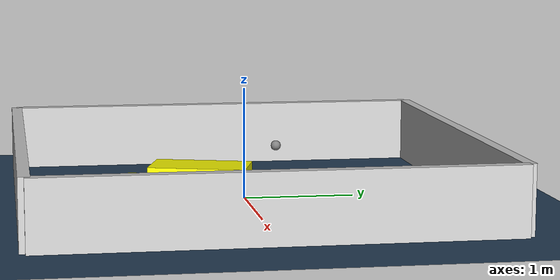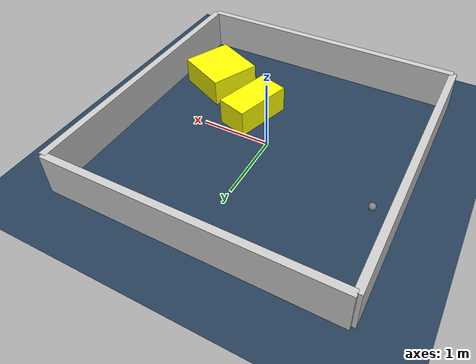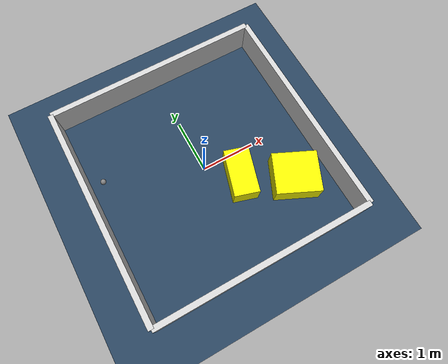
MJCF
<?xml version="1.0" ?>
<mujoco model="generated_environment">
  <option timestep="0.01" integrator="RK4" cone="elliptic"/>
  <default>
    <geom density="1"/>
  </default>
  <asset>
    <texture builtin="gradient" height="3072" rgb1="0.3 0.5 0.7" rgb2="0 0 0" type="skybox" width="512"/>
    <texture builtin="checker" height="300" mark="edge" markrgb="0.8 0.8 0.8" name="groundplane" rgb1="0.2 0.3 0.4" rgb2="0.1 0.2 0.3" type="2d" width="300"/>
    <material name="groundplane" reflectance="0.2" texrepeat="5 5" texture="groundplane" texuniform="true"/>
    <material name="robot" rgba="0.0 1.0 0.0 1"/>
  </asset>
  <worldbody>
    <light dir="0 0 -1" directional="true" pos="0 0 1.5"/>
    <geom condim="4" friction="1.0 0.005 0.001" material="groundplane" name="floor" size="0 0 0.05" type="plane"/>
    <body name="walls">
      <geom name="wall_1" condim="4" pos="-2.0 0.0 0.3" rgba="0.800000011920929 0.800000011920929 0.800000011920929 1.0" size="0.05 2.0 0.3" type="box"/>
      <geom name="wall_2" condim="4" pos="2.0 0.0 0.3" rgba="0.800000011920929 0.800000011920929 0.800000011920929 1.0" size="0.05 2.0 0.3" type="box"/>
      <geom name="wall_3" condim="4" pos="0.0 -2.0 0.3" rgba="0.800000011920929 0.800000011920929 0.800000011920929 1.0" size="2.0 0.05 0.3" type="box"/>
      <geom name="wall_4" condim="4" pos="0.0 2.0 0.3" rgba="0.800000011920929 0.800000011920929 0.800000011920929 1.0" size="2.0 0.05 0.3" type="box"/>
    </body>
    <body name="robot">
      <joint name="joint_x" type="slide" pos="0 0 0" axis="1 0 0"/>
      <joint name="joint_y" type="slide" pos="0 0 0" axis="0 1 0"/>
      <geom name="robot" type="sphere" pos="-1.7088439142559437 0.587091739046198 0.2" size="0.05" mass="5." friction="1.0 0.005 0.0001" condim="4"/>
      <site name="sensor_ball"/>
    </body>
    <body name="obstacle_1_movable">
      <geom name="obstacle_1_movable" condim="4" pos="1.3046359851438387 -0.935080610227849 0.2" euler="0 0 155.4472460440598" friction="1.0 0.005 0.001" rgba="1 1 0 1" size="0.40189037273868744 0.37075541999388906 0.2" type="box" mass="0.1"/>
      <joint type="free"/>
    </body>
    <body name="obstacle_2_movable">
      <geom name="obstacle_2_movable" condim="4" pos="0.4757040169038109 -0.4594032341495329 0.2" euler="0 0 253.29825468452356" friction="1.0 0.005 0.001" rgba="1 1 0 1" size="0.4249831529909753 0.2270634972743431 0.2" type="box" mass="0.1"/>
      <joint type="free"/>
    </body>
  </worldbody>
  <actuator>
    <motor name="actuator_x" joint="joint_x" gear="1" ctrlrange="-1 1"/>
    <motor name="actuator_y" joint="joint_y" gear="1" ctrlrange="-1 1"/>
  </actuator>
</mujoco>
